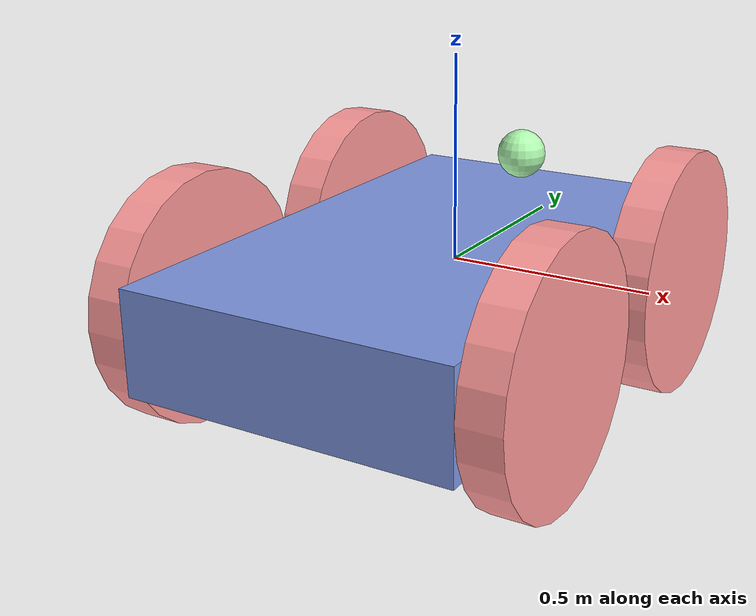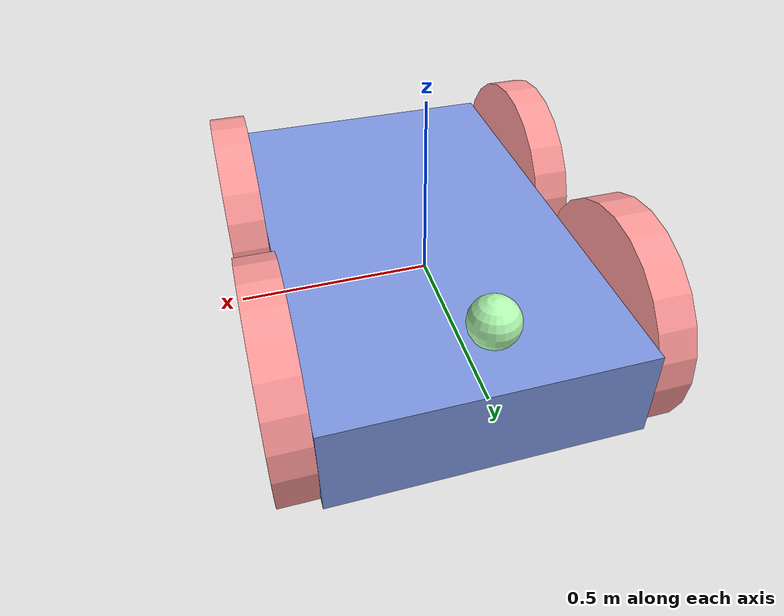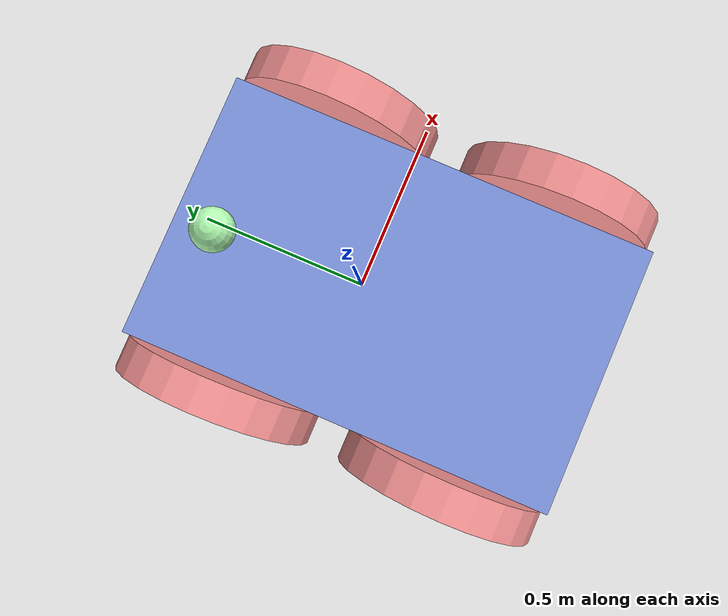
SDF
<?xml version='1.0'?>
<sdf version='1.7'>
  <model name='Robot'>
    <link name='link_0'>
      <inertial>
        <mass>1</mass>
        <inertia>
          <ixx>0.166667</ixx>
          <ixy>0</ixy>
          <ixz>0</ixz>
          <iyy>0.166667</iyy>
          <iyz>0</iyz>
          <izz>0.166667</izz>
        </inertia>
        <pose>0 0 0 0 -0 0</pose>
      </inertial>
      <pose>0.006295 -0.085 -0.039076 0 -0 0</pose>
      <gravity>1</gravity>
      <self_collide>0</self_collide>
      <kinematic>0</kinematic>
      <enable_wind>0</enable_wind>
      <visual name='visual'>
        <pose>0 0 0 0 -0 0</pose>
        <geometry>
          <box>
            <size>0.8 1.3 0.25</size>
          </box>
        </geometry>
        <material>
          <lighting>1</lighting>
          <script>
            <uri>file://media/materials/scripts/gazebo.material</uri>
            <name>Gazebo/Grey</name>
          </script>
          <shader type='pixel'>
            <normal_map>__default__</normal_map>
          </shader>
          <ambient>0.2 0.2 0.5 1</ambient>
          <diffuse>0.5 0.6 0.9 1</diffuse>
          <specular>0.01 0.01 0.21 1</specular>
          <emissive>0 0 0 1</emissive>
        </material>
        <transparency>0</transparency>
        <cast_shadows>1</cast_shadows>
      </visual>
      <collision name='collision'>
        <laser_retro>0</laser_retro>
        <max_contacts>10</max_contacts>
        <pose>0 0 0 0 -0 0</pose>
        <geometry>
          <box>
            <size>0.8 1.3 0.25</size>
          </box>
        </geometry>
        <surface>
          <friction>
            <ode>
              <mu>1</mu>
              <mu2>1</mu2>
              <fdir1>0 0 0</fdir1>
              <slip1>0</slip1>
              <slip2>0</slip2>
            </ode>
            <torsional>
              <coefficient>1</coefficient>
              <patch_radius>0</patch_radius>
              <surface_radius>0</surface_radius>
              <use_patch_radius>1</use_patch_radius>
              <ode>
                <slip>0</slip>
              </ode>
            </torsional>
          </friction>
          <bounce>
            <restitution_coefficient>0</restitution_coefficient>
            <threshold>1e+06</threshold>
          </bounce>
          <contact>
            <collide_without_contact>0</collide_without_contact>
            <collide_without_contact_bitmask>1</collide_without_contact_bitmask>
            <collide_bitmask>1</collide_bitmask>
            <ode>
              <soft_cfm>0</soft_cfm>
              <soft_erp>0.2</soft_erp>
              <kp>1e+13</kp>
              <kd>1</kd>
              <max_vel>0.01</max_vel>
              <min_depth>0</min_depth>
            </ode>
            <bullet>
              <split_impulse>1</split_impulse>
              <split_impulse_penetration_threshold>-0.01</split_impulse_penetration_threshold>
              <soft_cfm>0</soft_cfm>
              <soft_erp>0.2</soft_erp>
              <kp>1e+13</kp>
              <kd>1</kd>
            </bullet>
          </contact>
        </surface>
      </collision>
    </link>
    <link name='link_1_clone'>
      <inertial>
        <mass>1</mass>
        <inertia>
          <ixx>0.145833</ixx>
          <ixy>0</ixy>
          <ixz>0</ixz>
          <iyy>0.145833</iyy>
          <iyz>0</iyz>
          <izz>0.125</izz>
        </inertia>
        <pose>0 0 0 0 -0 0</pose>
      </inertial>
      <pose>-0.443734 0.265 -0.031576 0 1.5707 0</pose>
      <gravity>1</gravity>
      <self_collide>0</self_collide>
      <kinematic>0</kinematic>
      <enable_wind>0</enable_wind>
      <visual name='visual'>
        <pose>0 0 0 0 -0 0</pose>
        <geometry>
          <cylinder>
            <radius>0.3</radius>
            <length>0.1</length>
          </cylinder>
        </geometry>
        <material>
          <lighting>1</lighting>
          <script>
            <uri>file://media/materials/scripts/gazebo.material</uri>
            <name>Gazebo/Grey</name>
          </script>
          <shader type='pixel'>
            <normal_map>__default__</normal_map>
          </shader>
          <ambient>0.6 0.2 0.2 1</ambient>
          <diffuse>1 0.6 0.6 1</diffuse>
          <specular>0.31 0.01 0 1</specular>
          <emissive>0 0 0 1</emissive>
        </material>
        <transparency>0</transparency>
        <cast_shadows>1</cast_shadows>
      </visual>
      <collision name='collision'>
        <laser_retro>0</laser_retro>
        <max_contacts>10</max_contacts>
        <pose>0 0 0 0 -0 0</pose>
        <geometry>
          <cylinder>
            <radius>0.3</radius>
            <length>0.1</length>
          </cylinder>
        </geometry>
        <surface>
          <friction>
            <ode>
              <mu>1</mu>
              <mu2>1</mu2>
              <fdir1>0 0 0</fdir1>
              <slip1>0</slip1>
              <slip2>0</slip2>
            </ode>
            <torsional>
              <coefficient>1</coefficient>
              <patch_radius>0</patch_radius>
              <surface_radius>0</surface_radius>
              <use_patch_radius>1</use_patch_radius>
              <ode>
                <slip>0</slip>
              </ode>
            </torsional>
          </friction>
          <bounce>
            <restitution_coefficient>0</restitution_coefficient>
            <threshold>1e+06</threshold>
          </bounce>
          <contact>
            <collide_without_contact>0</collide_without_contact>
            <collide_without_contact_bitmask>1</collide_without_contact_bitmask>
            <collide_bitmask>1</collide_bitmask>
            <ode>
              <soft_cfm>0</soft_cfm>
              <soft_erp>0.2</soft_erp>
              <kp>1e+13</kp>
              <kd>1</kd>
              <max_vel>0.01</max_vel>
              <min_depth>0</min_depth>
            </ode>
            <bullet>
              <split_impulse>1</split_impulse>
              <split_impulse_penetration_threshold>-0.01</split_impulse_penetration_threshold>
              <soft_cfm>0</soft_cfm>
              <soft_erp>0.2</soft_erp>
              <kp>1e+13</kp>
              <kd>1</kd>
            </bullet>
          </contact>
        </surface>
      </collision>
    </link>
    <link name='link_1_clone_0'>
      <inertial>
        <mass>1</mass>
        <inertia>
          <ixx>0.145833</ixx>
          <ixy>0</ixy>
          <ixz>0</ixz>
          <iyy>0.145833</iyy>
          <iyz>0</iyz>
          <izz>0.125</izz>
        </inertia>
        <pose>0 0 0 0 -0 0</pose>
      </inertial>
      <pose>0.456324 0.265 -0.031576 0 1.5707 0</pose>
      <gravity>1</gravity>
      <self_collide>0</self_collide>
      <kinematic>0</kinematic>
      <enable_wind>0</enable_wind>
      <visual name='visual'>
        <pose>0 0 0 0 -0 0</pose>
        <geometry>
          <cylinder>
            <radius>0.3</radius>
            <length>0.1</length>
          </cylinder>
        </geometry>
        <material>
          <lighting>1</lighting>
          <script>
            <uri>file://media/materials/scripts/gazebo.material</uri>
            <name>Gazebo/Grey</name>
          </script>
          <shader type='pixel'>
            <normal_map>__default__</normal_map>
          </shader>
          <ambient>0.6 0.2 0.2 1</ambient>
          <diffuse>1 0.6 0.6 1</diffuse>
          <specular>0.31 0.01 0 1</specular>
          <emissive>0 0 0 1</emissive>
        </material>
        <transparency>0</transparency>
        <cast_shadows>1</cast_shadows>
      </visual>
      <collision name='collision'>
        <laser_retro>0</laser_retro>
        <max_contacts>10</max_contacts>
        <pose>0 0 0 0 -0 0</pose>
        <geometry>
          <cylinder>
            <radius>0.3</radius>
            <length>0.1</length>
          </cylinder>
        </geometry>
        <surface>
          <friction>
            <ode>
              <mu>1</mu>
              <mu2>1</mu2>
              <fdir1>0 0 0</fdir1>
              <slip1>0</slip1>
              <slip2>0</slip2>
            </ode>
            <torsional>
              <coefficient>1</coefficient>
              <patch_radius>0</patch_radius>
              <surface_radius>0</surface_radius>
              <use_patch_radius>1</use_patch_radius>
              <ode>
                <slip>0</slip>
              </ode>
            </torsional>
          </friction>
          <bounce>
            <restitution_coefficient>0</restitution_coefficient>
            <threshold>1e+06</threshold>
          </bounce>
          <contact>
            <collide_without_contact>0</collide_without_contact>
            <collide_without_contact_bitmask>1</collide_without_contact_bitmask>
            <collide_bitmask>1</collide_bitmask>
            <ode>
              <soft_cfm>0</soft_cfm>
              <soft_erp>0.2</soft_erp>
              <kp>1e+13</kp>
              <kd>1</kd>
              <max_vel>0.01</max_vel>
              <min_depth>0</min_depth>
            </ode>
            <bullet>
              <split_impulse>1</split_impulse>
              <split_impulse_penetration_threshold>-0.01</split_impulse_penetration_threshold>
              <soft_cfm>0</soft_cfm>
              <soft_erp>0.2</soft_erp>
              <kp>1e+13</kp>
              <kd>1</kd>
            </bullet>
          </contact>
        </surface>
      </collision>
    </link>
    <link name='link_1_clone_1'>
      <inertial>
        <mass>1</mass>
        <inertia>
          <ixx>0.145833</ixx>
          <ixy>0</ixy>
          <ixz>0</ixz>
          <iyy>0.145833</iyy>
          <iyz>0</iyz>
          <izz>0.125</izz>
        </inertia>
        <pose>0 0 0 0 -0 0</pose>
      </inertial>
      <pose>0.456324 -0.435 -0.031576 0 1.5707 0</pose>
      <gravity>1</gravity>
      <self_collide>0</self_collide>
      <kinematic>0</kinematic>
      <enable_wind>0</enable_wind>
      <visual name='visual'>
        <pose>0 0 0 0 -0 0</pose>
        <geometry>
          <cylinder>
            <radius>0.3</radius>
            <length>0.1</length>
          </cylinder>
        </geometry>
        <material>
          <lighting>1</lighting>
          <script>
            <uri>file://media/materials/scripts/gazebo.material</uri>
            <name>Gazebo/Grey</name>
          </script>
          <shader type='pixel'>
            <normal_map>__default__</normal_map>
          </shader>
          <ambient>0.6 0.2 0.2 1</ambient>
          <diffuse>1 0.6 0.6 1</diffuse>
          <specular>0.31 0.01 0 1</specular>
          <emissive>0 0 0 1</emissive>
        </material>
        <transparency>0</transparency>
        <cast_shadows>1</cast_shadows>
      </visual>
      <collision name='collision'>
        <laser_retro>0</laser_retro>
        <max_contacts>10</max_contacts>
        <pose>0 0 0 0 -0 0</pose>
        <geometry>
          <cylinder>
            <radius>0.3</radius>
            <length>0.1</length>
          </cylinder>
        </geometry>
        <surface>
          <friction>
            <ode>
              <mu>1</mu>
              <mu2>1</mu2>
              <fdir1>0 0 0</fdir1>
              <slip1>0</slip1>
              <slip2>0</slip2>
            </ode>
            <torsional>
              <coefficient>1</coefficient>
              <patch_radius>0</patch_radius>
              <surface_radius>0</surface_radius>
              <use_patch_radius>1</use_patch_radius>
              <ode>
                <slip>0</slip>
              </ode>
            </torsional>
          </friction>
          <bounce>
            <restitution_coefficient>0</restitution_coefficient>
            <threshold>1e+06</threshold>
          </bounce>
          <contact>
            <collide_without_contact>0</collide_without_contact>
            <collide_without_contact_bitmask>1</collide_without_contact_bitmask>
            <collide_bitmask>1</collide_bitmask>
            <ode>
              <soft_cfm>0</soft_cfm>
              <soft_erp>0.2</soft_erp>
              <kp>1e+13</kp>
              <kd>1</kd>
              <max_vel>0.01</max_vel>
              <min_depth>0</min_depth>
            </ode>
            <bullet>
              <split_impulse>1</split_impulse>
              <split_impulse_penetration_threshold>-0.01</split_impulse_penetration_threshold>
              <soft_cfm>0</soft_cfm>
              <soft_erp>0.2</soft_erp>
              <kp>1e+13</kp>
              <kd>1</kd>
            </bullet>
          </contact>
        </surface>
      </collision>
    </link>
    <link name='link_1_clone_2'>
      <inertial>
        <mass>1</mass>
        <inertia>
          <ixx>0.145833</ixx>
          <ixy>0</ixy>
          <ixz>0</ixz>
          <iyy>0.145833</iyy>
          <iyz>0</iyz>
          <izz>0.125</izz>
        </inertia>
        <pose>0 0 0 0 -0 0</pose>
      </inertial>
      <pose>-0.443734 -0.435 -0.031576 0 1.5707 0</pose>
      <gravity>1</gravity>
      <self_collide>0</self_collide>
      <kinematic>0</kinematic>
      <enable_wind>0</enable_wind>
      <visual name='visual'>
        <pose>0 0 0 0 -0 0</pose>
        <geometry>
          <cylinder>
            <radius>0.3</radius>
            <length>0.1</length>
          </cylinder>
        </geometry>
        <material>
          <lighting>1</lighting>
          <script>
            <uri>file://media/materials/scripts/gazebo.material</uri>
            <name>Gazebo/Grey</name>
          </script>
          <shader type='pixel'>
            <normal_map>__default__</normal_map>
          </shader>
          <ambient>0.6 0.2 0.2 1</ambient>
          <diffuse>1 0.6 0.6 1</diffuse>
          <specular>0.31 0.01 0 1</specular>
          <emissive>0 0 0 1</emissive>
        </material>
        <transparency>0</transparency>
        <cast_shadows>1</cast_shadows>
      </visual>
      <collision name='collision'>
        <laser_retro>0</laser_retro>
        <max_contacts>10</max_contacts>
        <pose>0 0 0 0 -0 0</pose>
        <geometry>
          <cylinder>
            <radius>0.3</radius>
            <length>0.1</length>
          </cylinder>
        </geometry>
        <surface>
          <friction>
            <ode>
              <mu>1</mu>
              <mu2>1</mu2>
              <fdir1>0 0 0</fdir1>
              <slip1>0</slip1>
              <slip2>0</slip2>
            </ode>
            <torsional>
              <coefficient>1</coefficient>
              <patch_radius>0</patch_radius>
              <surface_radius>0</surface_radius>
              <use_patch_radius>1</use_patch_radius>
              <ode>
                <slip>0</slip>
              </ode>
            </torsional>
          </friction>
          <bounce>
            <restitution_coefficient>0</restitution_coefficient>
            <threshold>1e+06</threshold>
          </bounce>
          <contact>
            <collide_without_contact>0</collide_without_contact>
            <collide_without_contact_bitmask>1</collide_without_contact_bitmask>
            <collide_bitmask>1</collide_bitmask>
            <ode>
              <soft_cfm>0</soft_cfm>
              <soft_erp>0.2</soft_erp>
              <kp>1e+13</kp>
              <kd>1</kd>
              <max_vel>0.01</max_vel>
              <min_depth>0</min_depth>
            </ode>
            <bullet>
              <split_impulse>1</split_impulse>
              <split_impulse_penetration_threshold>-0.01</split_impulse_penetration_threshold>
              <soft_cfm>0</soft_cfm>
              <soft_erp>0.2</soft_erp>
              <kp>1e+13</kp>
              <kd>1</kd>
            </bullet>
          </contact>
        </surface>
      </collision>
    </link>
    <link name='link_2'>
      <inertial>
        <mass>0.00214296</mass>
        <inertia>
          <ixx>3.56e-06</ixx>
          <ixy>0</ixy>
          <ixz>0</ixz>
          <iyy>3.56e-06</iyy>
          <iyz>0</iyz>
          <izz>3.56e-06</izz>
        </inertia>
        <pose>0 0 0 0 -0 0</pose>
      </inertial>
      <pose>-0.031475 0.425 0.165383 0 -0 0</pose>
      <gravity>1</gravity>
      <self_collide>0</self_collide>
      <kinematic>0</kinematic>
      <enable_wind>0</enable_wind>
      <visual name='visual'>
        <pose>0 0 0 0 -0 0</pose>
        <geometry>
          <sphere>
            <radius>0.0644593</radius>
          </sphere>
        </geometry>
        <material>
          <lighting>1</lighting>
          <script>
            <uri>file://media/materials/scripts/gazebo.material</uri>
            <name>Gazebo/Grey</name>
          </script>
          <shader type='pixel'>
            <normal_map>__default__</normal_map>
          </shader>
          <ambient>0 0.4 0 0</ambient>
          <diffuse>0.7 1 0.7 1</diffuse>
          <specular>0.01 0.31 0.01 1</specular>
          <emissive>0 0 0 1</emissive>
        </material>
        <transparency>0</transparency>
        <cast_shadows>1</cast_shadows>
      </visual>
      <collision name='collision'>
        <laser_retro>0</laser_retro>
        <max_contacts>10</max_contacts>
        <pose>0 0 0 0 -0 0</pose>
        <geometry>
          <sphere>
            <radius>0.064459</radius>
          </sphere>
        </geometry>
        <surface>
          <friction>
            <ode>
              <mu>1</mu>
              <mu2>1</mu2>
              <fdir1>0 0 0</fdir1>
              <slip1>0</slip1>
              <slip2>0</slip2>
            </ode>
            <torsional>
              <coefficient>1</coefficient>
              <patch_radius>0</patch_radius>
              <surface_radius>0</surface_radius>
              <use_patch_radius>1</use_patch_radius>
              <ode>
                <slip>0</slip>
              </ode>
            </torsional>
          </friction>
          <bounce>
            <restitution_coefficient>0</restitution_coefficient>
            <threshold>1e+06</threshold>
          </bounce>
          <contact>
            <collide_without_contact>0</collide_without_contact>
            <collide_without_contact_bitmask>1</collide_without_contact_bitmask>
            <collide_bitmask>1</collide_bitmask>
            <ode>
              <soft_cfm>0</soft_cfm>
              <soft_erp>0.2</soft_erp>
              <kp>1e+13</kp>
              <kd>1</kd>
              <max_vel>0.01</max_vel>
              <min_depth>0</min_depth>
            </ode>
            <bullet>
              <split_impulse>1</split_impulse>
              <split_impulse_penetration_threshold>-0.01</split_impulse_penetration_threshold>
              <soft_cfm>0</soft_cfm>
              <soft_erp>0.2</soft_erp>
              <kp>1e+13</kp>
              <kd>1</kd>
            </bullet>
          </contact>
        </surface>
      </collision>
    </link>
    <joint name='link_0_JOINT_0' type='revolute'>
      <parent>link_0</parent>
      <child>link_1_clone</child>
      <pose>0 0 0 0 -0 0</pose>
      <axis>
        <xyz>0 0 1</xyz>
        <limit>
          <lower>-1.79769e+308</lower>
          <upper>1.79769e+308</upper>
          <effort>-1</effort>
          <velocity>-1</velocity>
        </limit>
        <dynamics>
          <spring_reference>0</spring_reference>
          <spring_stiffness>0</spring_stiffness>
          <damping>0</damping>
        </dynamics>
      </axis>
      <physics>
        <ode>
          <limit>
            <cfm>0</cfm>
            <erp>0.2</erp>
          </limit>
          <suspension>
            <cfm>0</cfm>
            <erp>0.2</erp>
          </suspension>
        </ode>
      </physics>
    </joint>
    <joint name='link_0_JOINT_1' type='revolute'>
      <parent>link_0</parent>
      <child>link_1_clone_2</child>
      <pose>0 0 0 0 -0 0</pose>
      <axis>
        <xyz>0 0 1</xyz>
        <limit>
          <lower>-1.79769e+308</lower>
          <upper>1.79769e+308</upper>
          <effort>-1</effort>
          <velocity>-1</velocity>
        </limit>
        <dynamics>
          <spring_reference>0</spring_reference>
          <spring_stiffness>0</spring_stiffness>
          <damping>0</damping>
        </dynamics>
      </axis>
      <physics>
        <ode>
          <limit>
            <cfm>0</cfm>
            <erp>0.2</erp>
          </limit>
          <suspension>
            <cfm>0</cfm>
            <erp>0.2</erp>
          </suspension>
        </ode>
      </physics>
    </joint>
    <joint name='link_0_JOINT_2' type='revolute'>
      <parent>link_0</parent>
      <child>link_1_clone_1</child>
      <pose>0 0 0 0 -0 0</pose>
      <axis>
        <xyz>0 0 1</xyz>
        <limit>
          <lower>-1.79769e+308</lower>
          <upper>1.79769e+308</upper>
          <effort>-1</effort>
          <velocity>-1</velocity>
        </limit>
        <dynamics>
          <spring_reference>0</spring_reference>
          <spring_stiffness>0</spring_stiffness>
          <damping>0</damping>
        </dynamics>
      </axis>
      <physics>
        <ode>
          <limit>
            <cfm>0</cfm>
            <erp>0.2</erp>
          </limit>
          <suspension>
            <cfm>0</cfm>
            <erp>0.2</erp>
          </suspension>
        </ode>
      </physics>
    </joint>
    <joint name='link_0_JOINT_3' type='revolute'>
      <parent>link_0</parent>
      <child>link_1_clone_0</child>
      <pose>0 0 0 0 -0 0</pose>
      <axis>
        <xyz>0 0 1</xyz>
        <limit>
          <lower>-1.79769e+308</lower>
          <upper>1.79769e+308</upper>
          <effort>-1</effort>
          <velocity>-1</velocity>
        </limit>
        <dynamics>
          <spring_reference>0</spring_reference>
          <spring_stiffness>0</spring_stiffness>
          <damping>0</damping>
        </dynamics>
      </axis>
      <physics>
        <ode>
          <limit>
            <cfm>0</cfm>
            <erp>0.2</erp>
          </limit>
          <suspension>
            <cfm>0</cfm>
            <erp>0.2</erp>
          </suspension>
        </ode>
      </physics>
    </joint>
    <joint name='link_0_JOINT_4' type='fixed'>
      <parent>link_0</parent>
      <child>link_2</child>
      <pose>0 0 0 0 -0 0</pose>
      <physics>
        <ode>
          <limit>
            <cfm>0</cfm>
            <erp>0.2</erp>
          </limit>
          <suspension>
            <cfm>0</cfm>
            <erp>0.2</erp>
          </suspension>
        </ode>
      </physics>
    </joint>
    <static>0</static>
    <allow_auto_disable>1</allow_auto_disable>
  </model>
</sdf>
